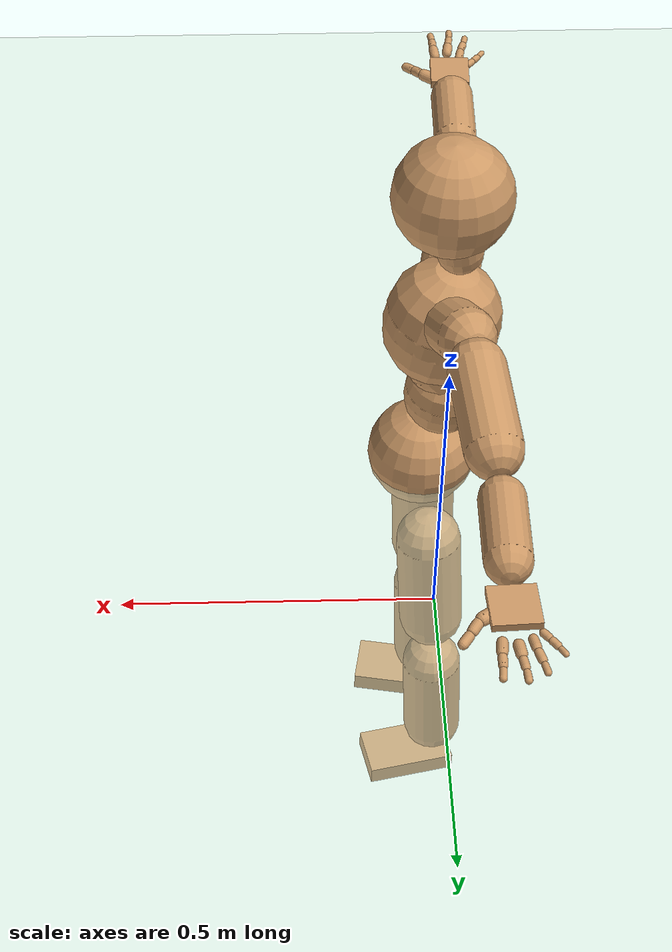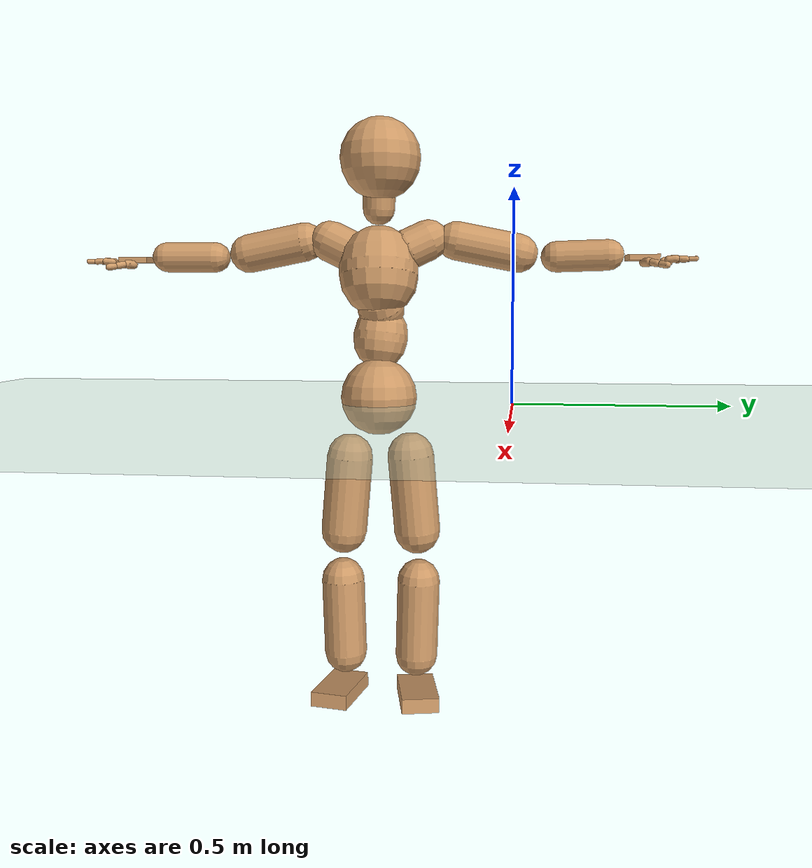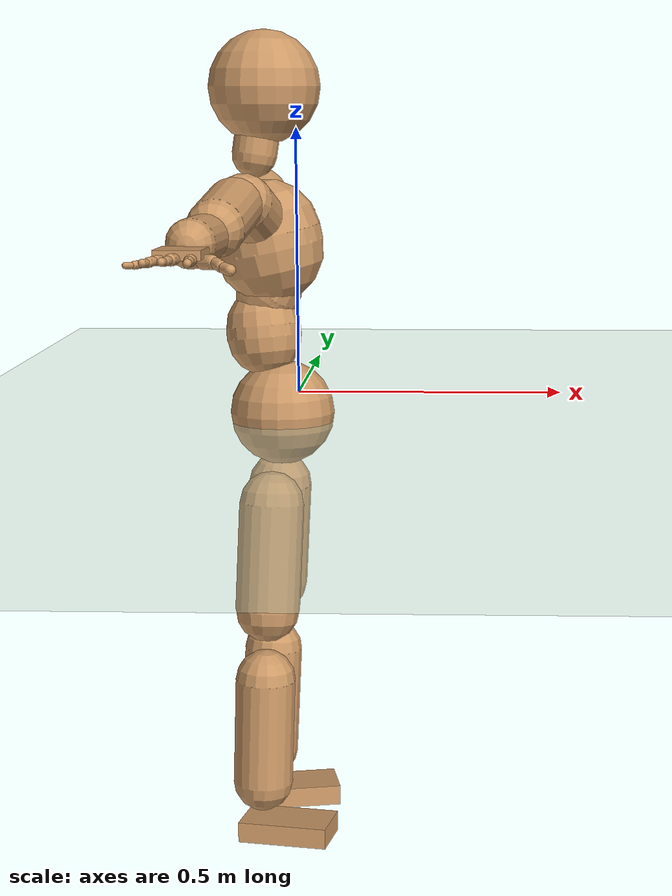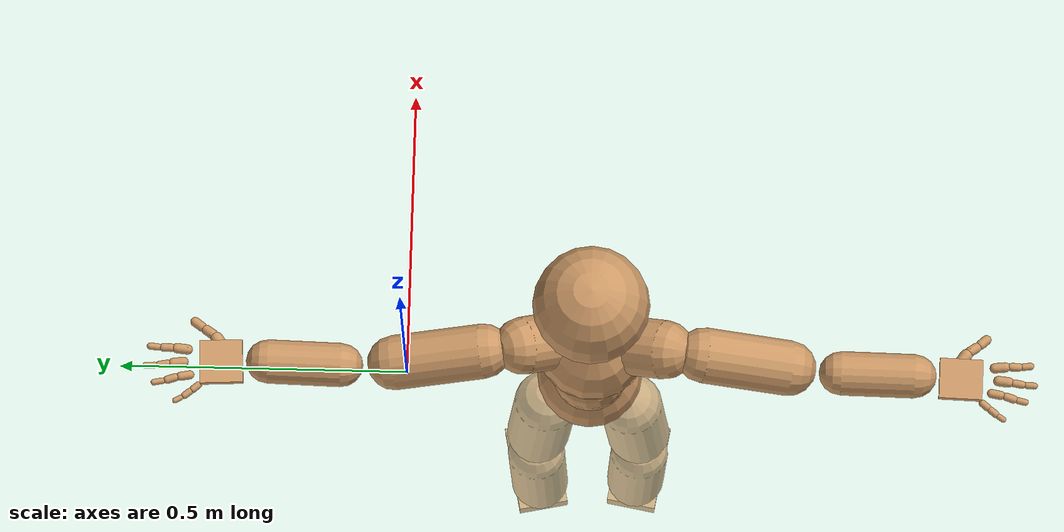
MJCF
<mujoco model="humanoid">
  <compiler coordinate="local" angle="radian"/>
  <default>
    <joint damping="0.0" armature="0.01" stiffness="0.0" limited="true"/>
    <geom conaffinity="1" condim="3" contype="7" margin="0.001" rgba="0.8 0.6 .4 1"/>
  </default>
  <asset>
    <texture type="skybox" builtin="gradient" rgb1=".4 .5 .6" rgb2="0 0 0" width="100" height="100"/>
    <texture builtin="flat" height="1278" mark="cross" markrgb="1 1 1" name="texgeom" random="0.01" rgb1="0.8 0.6 0.4" rgb2="0.8 0.6 0.4" type="cube" width="127"/>
    <texture builtin="checker" height="100" name="texplane" rgb1="0 0 0" rgb2="0.8 0.8 0.8" type="2d" width="100"/>
    <material name="MatPlane" reflectance="0.5" shininess="1" specular="1" texrepeat="60 60" texture="texplane"/>
    <material name="geom" texture="texgeom" texuniform="true"/>
  </asset>
  <worldbody>
    <light cutoff="100" diffuse="1 1 1" dir="-0 0 -1.3" directional="true" exponent="1" pos="0 0 1.3" specular=".1 .1 .1"/>
    <geom conaffinity="1" condim="3" name="floor" pos="0 0 0" rgba="0.8 0.9 0.8 1" size="100 100 .2" type="plane" material="MatPlane"/>
    <body name="Pelvis" pos="0.0004 -0.3167 0.0142">
      <freejoint name="Pelvis"/>
      <geom type="sphere" contype="1" conaffinity="1" density="500" size="0.0911" pos="0.0000 0.0000 0.0000" name="Pelvis"/>
      <body name="L_Hip" pos="-0.0098 0.0697 -0.0801">
        <joint name="L_Hip_x" type="hinge" pos="0 0 0" axis="1 0 0" stiffness="800" damping="80" armature="0.02" range="-180.0000 180.0000"/>
        <joint name="L_Hip_y" type="hinge" pos="0 0 0" axis="0 1 0" stiffness="800" damping="80" armature="0.02" range="-180.0000 180.0000"/>
        <joint name="L_Hip_z" type="hinge" pos="0 0 0" axis="0 0 1" stiffness="800" damping="80" armature="0.02" range="-180.0000 180.0000"/>
        <geom type="capsule" contype="1" conaffinity="1" density="500" fromto="-0.0037 0.0049 -0.0626 -0.0149 0.0195 -0.2504" size="0.0558" name="L_Hip"/>
        <body name="L_Knee" pos="-0.0186 0.0244 -0.313">
          <joint name="L_Knee_x" type="hinge" pos="0 0 0" axis="1 0 0" stiffness="800" damping="80" armature="0.02" range="-180.0000 180.0000"/>
          <joint name="L_Knee_y" type="hinge" pos="0 0 0" axis="0 1 0" stiffness="800" damping="80" armature="0.02" range="-180.0000 180.0000"/>
          <joint name="L_Knee_z" type="hinge" pos="0 0 0" axis="0 0 1" stiffness="800" damping="80" armature="0.02" range="-180.0000 180.0000"/>
          <geom type="capsule" contype="1" conaffinity="1" density="500" fromto="-0.0031 -0.0022 -0.0643 -0.0123 -0.0087 -0.2570" size="0.052" name="L_Knee"/>
          <body name="L_Ankle" pos="-0.0154 -0.0108 -0.3213">
            <joint name="L_Ankle_x" type="hinge" pos="0 0 0" axis="1 0 0" stiffness="800" damping="80" armature="0.02" range="-180.0000 180.0000"/>
            <joint name="L_Ankle_y" type="hinge" pos="0 0 0" axis="0 1 0" stiffness="800" damping="80" armature="0.02" range="-180.0000 180.0000"/>
            <joint name="L_Ankle_z" type="hinge" pos="0 0 0" axis="0 0 1" stiffness="800" damping="80" armature="0.02" range="-180.0000 180.0000"/>
            <geom type="box" contype="1" conaffinity="1" density="500" pos="0.0494 0.0102 -0.0186" size="0.0785 0.045 0.0179" quat="0.9948 0.0000 0.0000 0.1020" name="L_Ankle"/>
            <body name="L_Toe" pos="0.0988 0.0205 -0.0372">
              <joint name="L_Toe_x" type="hinge" pos="0 0 0" axis="1 0 0" stiffness="500" damping="50" armature="0.02" range="-180.0000 180.0000"/>
              <joint name="L_Toe_y" type="hinge" pos="0 0 0" axis="0 1 0" stiffness="500" damping="50" armature="0.02" range="-180.0000 180.0000"/>
              <joint name="L_Toe_z" type="hinge" pos="0 0 0" axis="0 0 1" stiffness="500" damping="50" armature="0.02" range="-180.0000 180.0000"/>
              <geom type="box" contype="1" conaffinity="1" density="500" pos="0.0000 0.0000 0.0202" size="0.0009 0.0022 0.001" quat="0.9940 0.0000 0.0000 0.1095" name="L_Toe"/>
            </body>
          </body>
        </body>
      </body>
      <body name="R_Hip" pos="-0.011 -0.0683 -0.0863">
        <joint name="R_Hip_x" type="hinge" pos="0 0 0" axis="1 0 0" stiffness="800" damping="80" armature="0.02" range="-180.0000 180.0000"/>
        <joint name="R_Hip_y" type="hinge" pos="0 0 0" axis="0 1 0" stiffness="800" damping="80" armature="0.02" range="-180.0000 180.0000"/>
        <joint name="R_Hip_z" type="hinge" pos="0 0 0" axis="0 0 1" stiffness="800" damping="80" armature="0.02" range="-180.0000 180.0000"/>
        <geom type="capsule" contype="1" conaffinity="1" density="500" fromto="-0.0026 -0.0057 -0.0618 -0.0103 -0.0229 -0.2471" size="0.0556" name="R_Hip"/>
        <body name="R_Knee" pos="-0.0128 -0.0286 -0.3088">
          <joint name="R_Knee_x" type="hinge" pos="0 0 0" axis="1 0 0" stiffness="800" damping="80" armature="0.02" range="-180.0000 180.0000"/>
          <joint name="R_Knee_y" type="hinge" pos="0 0 0" axis="0 1 0" stiffness="800" damping="80" armature="0.02" range="-180.0000 180.0000"/>
          <joint name="R_Knee_z" type="hinge" pos="0 0 0" axis="0 0 1" stiffness="800" damping="80" armature="0.02" range="-180.0000 180.0000"/>
          <geom type="capsule" contype="1" conaffinity="1" density="500" fromto="-0.0023 0.0013 -0.0626 -0.0093 0.0052 -0.2506" size="0.0521" name="R_Knee"/>
          <body name="R_Ankle" pos="-0.0116 0.0065 -0.3132">
            <joint name="R_Ankle_x" type="hinge" pos="0 0 0" axis="1 0 0" stiffness="800" damping="80" armature="0.02" range="-180.0000 180.0000"/>
            <joint name="R_Ankle_y" type="hinge" pos="0 0 0" axis="0 1 0" stiffness="800" damping="80" armature="0.02" range="-180.0000 180.0000"/>
            <joint name="R_Ankle_z" type="hinge" pos="0 0 0" axis="0 0 1" stiffness="800" damping="80" armature="0.02" range="-180.0000 180.0000"/>
            <geom type="box" contype="1" conaffinity="1" density="500" pos="0.0463 -0.0084 -0.0203" size="0.0785 0.045 0.0179" quat="0.9960 0.0000 0.0000 -0.0892" name="R_Ankle"/>
            <body name="R_Toe" pos="0.0926 -0.0167 -0.0405">
              <joint name="R_Toe_x" type="hinge" pos="0 0 0" axis="1 0 0" stiffness="500" damping="50" armature="0.02" range="-180.0000 180.0000"/>
              <joint name="R_Toe_y" type="hinge" pos="0 0 0" axis="0 1 0" stiffness="500" damping="50" armature="0.02" range="-180.0000 180.0000"/>
              <joint name="R_Toe_z" type="hinge" pos="0 0 0" axis="0 0 1" stiffness="500" damping="50" armature="0.02" range="-180.0000 180.0000"/>
              <geom type="box" contype="1" conaffinity="1" density="500" pos="0.0000 0.0000 0.0218" size="0.0009 0.0022 0.001" quat="0.9970 0.0000 0.0000 -0.0771" name="R_Toe"/>
            </body>
          </body>
        </body>
      </body>
      <body name="Torso" pos="-0.0259 -0.0051 0.0901">
        <joint name="Torso_x" type="hinge" pos="0 0 0" axis="1 0 0" stiffness="1000" damping="100" armature="0.02" range="-180.0000 180.0000"/>
        <joint name="Torso_y" type="hinge" pos="0 0 0" axis="0 1 0" stiffness="1000" damping="100" armature="0.02" range="-180.0000 180.0000"/>
        <joint name="Torso_z" type="hinge" pos="0 0 0" axis="0 0 1" stiffness="1000" damping="100" armature="0.02" range="-180.0000 180.0000"/>
        <geom type="capsule" contype="1" conaffinity="1" density="500" fromto="-0.0062 0.0062 0.0609 -0.0042 0.0041 0.0406" size="0.0652" name="Torso"/>
        <body name="Spine" pos="-0.0104 0.0103 0.1016">
          <joint name="Spine_x" type="hinge" pos="0 0 0" axis="1 0 0" stiffness="1000" damping="100" armature="0.02" range="-180.0000 180.0000"/>
          <joint name="Spine_y" type="hinge" pos="0 0 0" axis="0 1 0" stiffness="1000" damping="100" armature="0.02" range="-180.0000 180.0000"/>
          <joint name="Spine_z" type="hinge" pos="0 0 0" axis="0 0 1" stiffness="1000" damping="100" armature="0.02" range="-180.0000 180.0000"/>
          <geom type="capsule" contype="1" conaffinity="1" density="500" fromto="0.0174 -0.0035 0.0237 0.0116 -0.0023 0.0158" size="0.0556" name="Spine"/>
          <body name="Chest" pos="0.029 -0.0059 0.0395">
            <joint name="Chest_x" type="hinge" pos="0 0 0" axis="1 0 0" stiffness="1000" damping="100" armature="0.02" range="-180.0000 180.0000"/>
            <joint name="Chest_y" type="hinge" pos="0 0 0" axis="0 1 0" stiffness="1000" damping="100" armature="0.02" range="-180.0000 180.0000"/>
            <joint name="Chest_z" type="hinge" pos="0 0 0" axis="0 0 1" stiffness="1000" damping="100" armature="0.02" range="-180.0000 180.0000"/>
            <geom type="capsule" contype="1" conaffinity="1" density="500" fromto="-0.0166 -0.0017 0.0796 -0.0111 -0.0011 0.0531" size="0.0943" name="Chest"/>
            <body name="Neck" pos="-0.0395 -0.0056 0.1853">
              <joint name="Neck_x" type="hinge" pos="0 0 0" axis="1 0 0" stiffness="500" damping="50" armature="0.02" range="-180.0000 180.0000"/>
              <joint name="Neck_y" type="hinge" pos="0 0 0" axis="0 1 0" stiffness="500" damping="50" armature="0.02" range="-180.0000 180.0000"/>
              <joint name="Neck_z" type="hinge" pos="0 0 0" axis="0 0 1" stiffness="500" damping="50" armature="0.02" range="-180.0000 180.0000"/>
              <geom type="capsule" contype="1" conaffinity="1" density="500" fromto="0.0043 0.0017 0.0286 0.0174 0.0067 0.1143" size="0.0388" name="Neck"/>
              <body name="Head" pos="0.0217 0.0084 0.1428">
                <joint name="Head_x" type="hinge" pos="0 0 0" axis="1 0 0" stiffness="500" damping="50" armature="0.02" range="-180.0000 180.0000"/>
                <joint name="Head_y" type="hinge" pos="0 0 0" axis="0 1 0" stiffness="500" damping="50" armature="0.02" range="-180.0000 180.0000"/>
                <joint name="Head_z" type="hinge" pos="0 0 0" axis="0 0 1" stiffness="500" damping="50" armature="0.02" range="-180.0000 180.0000"/>
                <geom type="sphere" contype="1" conaffinity="1" density="500" size="0.0963" pos="0.0000 0.0000 0.0000" name="Head"/>
              </body>
            </body>
            <body name="L_Thorax" pos="-0.0187 0.0488 0.1083">
              <joint name="L_Thorax_x" type="hinge" pos="0 0 0" axis="1 0 0" stiffness="500" damping="50" armature="0.02" range="-180.0000 180.0000"/>
              <joint name="L_Thorax_y" type="hinge" pos="0 0 0" axis="0 1 0" stiffness="500" damping="50" armature="0.02" range="-180.0000 180.0000"/>
              <joint name="L_Thorax_z" type="hinge" pos="0 0 0" axis="0 0 1" stiffness="500" damping="50" armature="0.02" range="-180.0000 180.0000"/>
              <geom type="capsule" contype="1" conaffinity="1" density="500" fromto="-0.0053 0.0165 0.0080 -0.0213 0.0658 0.0319" size="0.0481" name="L_Thorax"/>
              <body name="L_Shoulder" pos="-0.0266 0.0823 0.0398">
                <joint name="L_Shoulder_x" type="hinge" pos="0 0 0" axis="1 0 0" stiffness="500" damping="50" armature="0.02" range="-180.0000 180.0000"/>
                <joint name="L_Shoulder_y" type="hinge" pos="0 0 0" axis="0 1 0" stiffness="500" damping="50" armature="0.02" range="-180.0000 180.0000"/>
                <joint name="L_Shoulder_z" type="hinge" pos="0 0 0" axis="0 0 1" stiffness="500" damping="50" armature="0.02" range="-180.0000 180.0000"/>
                <geom type="capsule" contype="1" conaffinity="1" density="500" fromto="-0.0051 0.0490 -0.0098 -0.0206 0.1961 -0.0390" size="0.0463" name="L_Shoulder"/>
                <body name="L_Elbow" pos="-0.0257 0.2452 -0.0488">
                  <joint name="L_Elbow_x" type="hinge" pos="0 0 0" axis="1 0 0" stiffness="500" damping="50" armature="0.02" range="-720.0000 720.0000"/>
                  <joint name="L_Elbow_y" type="hinge" pos="0 0 0" axis="0 1 0" stiffness="500" damping="50" armature="0.02" range="-720.0000 720.0000"/>
                  <joint name="L_Elbow_z" type="hinge" pos="0 0 0" axis="0 0 1" stiffness="500" damping="50" armature="0.02" range="-720.0000 720.0000"/>
                  <geom type="capsule" contype="1" conaffinity="1" density="500" fromto="0.0008 0.0408 0.0012 0.0031 0.1630 0.0048" size="0.0367" name="L_Elbow"/>
                  <body name="L_Wrist" pos="0.0039 0.2038 0.006">
                    <joint name="L_Wrist_x" type="hinge" pos="0 0 0" axis="1 0 0" stiffness="300" damping="30" armature="0.02" range="-180.0000 180.0000"/>
                    <joint name="L_Wrist_y" type="hinge" pos="0 0 0" axis="0 1 0" stiffness="300" damping="30" armature="0.02" range="-180.0000 180.0000"/>
                    <joint name="L_Wrist_z" type="hinge" pos="0 0 0" axis="0 0 1" stiffness="300" damping="30" armature="0.02" range="-180.0000 180.0000"/>
                    <geom type="box" contype="1" conaffinity="1" density="500" pos="-0.0019 0.0377 -0.0079" size="0.036 0.0364 0.0067" quat="0.7246 0.0000 0.0000 -0.6892" name="L_Wrist"/>
                    <body name="L_Index1" pos="0.0191 0.0891 -0.0138">
                      <joint name="L_Index1_x" type="hinge" pos="0 0 0" axis="1 0 0" stiffness="100" damping="10" armature="0.02" range="-180.0000 180.0000"/>
                      <joint name="L_Index1_y" type="hinge" pos="0 0 0" axis="0 1 0" stiffness="100" damping="10" armature="0.02" range="-180.0000 180.0000"/>
                      <joint name="L_Index1_z" type="hinge" pos="0 0 0" axis="0 0 1" stiffness="100" damping="10" armature="0.02" range="-180.0000 180.0000"/>
                      <geom type="capsule" contype="1" conaffinity="1" density="500" fromto="0.0005 0.0059 0.0005 0.0021 0.0235 0.0020" size="0.0084" name="L_Index1"/>
                      <body name="L_Index2" pos="0.0026 0.0294 0.0025">
                        <joint name="L_Index2_x" type="hinge" pos="0 0 0" axis="1 0 0" stiffness="100" damping="10" armature="0.02" range="-180.0000 180.0000"/>
                        <joint name="L_Index2_y" type="hinge" pos="0 0 0" axis="0 1 0" stiffness="100" damping="10" armature="0.02" range="-180.0000 180.0000"/>
                        <joint name="L_Index2_z" type="hinge" pos="0 0 0" axis="0 0 1" stiffness="100" damping="10" armature="0.02" range="-180.0000 180.0000"/>
                        <geom type="capsule" contype="1" conaffinity="1" density="500" fromto="0.0001 0.0042 -0.0003 0.0003 0.0167 -0.0011" size="0.007" name="L_Index2"/>
                        <body name="L_Index3" pos="0.0003 0.0209 -0.0013">
                          <joint name="L_Index3_x" type="hinge" pos="0 0 0" axis="1 0 0" stiffness="100" damping="10" armature="0.02" range="-180.0000 180.0000"/>
                          <joint name="L_Index3_y" type="hinge" pos="0 0 0" axis="0 1 0" stiffness="100" damping="10" armature="0.02" range="-180.0000 180.0000"/>
                          <joint name="L_Index3_z" type="hinge" pos="0 0 0" axis="0 0 1" stiffness="100" damping="10" armature="0.02" range="-180.0000 180.0000"/>
                          <geom type="capsule" contype="1" conaffinity="1" density="500" fromto="0.0005 0.0046 0.0001 0.0019 0.0183 0.0005" size="0.0058" name="L_Index3"/>
                        </body>
                      </body>
                    </body>
                    <body name="L_Middle1" pos="-0.0019 0.0954 -0.0118">
                      <joint name="L_Middle1_x" type="hinge" pos="0 0 0" axis="1 0 0" stiffness="100" damping="10" armature="0.02" range="-180.0000 180.0000"/>
                      <joint name="L_Middle1_y" type="hinge" pos="0 0 0" axis="0 1 0" stiffness="100" damping="10" armature="0.02" range="-180.0000 180.0000"/>
                      <joint name="L_Middle1_z" type="hinge" pos="0 0 0" axis="0 0 1" stiffness="100" damping="10" armature="0.02" range="-180.0000 180.0000"/>
                      <geom type="capsule" contype="1" conaffinity="1" density="500" fromto="-0.0007 0.0056 0.0002 -0.0029 0.0223 0.0010" size="0.0086" name="L_Middle1"/>
                      <body name="L_Middle2" pos="-0.0036 0.0279 0.0012">
                        <joint name="L_Middle2_x" type="hinge" pos="0 0 0" axis="1 0 0" stiffness="100" damping="10" armature="0.02" range="-180.0000 180.0000"/>
                        <joint name="L_Middle2_y" type="hinge" pos="0 0 0" axis="0 1 0" stiffness="100" damping="10" armature="0.02" range="-180.0000 180.0000"/>
                        <joint name="L_Middle2_z" type="hinge" pos="0 0 0" axis="0 0 1" stiffness="100" damping="10" armature="0.02" range="-180.0000 180.0000"/>
                        <geom type="capsule" contype="1" conaffinity="1" density="500" fromto="-0.0007 0.0043 -0.0001 -0.0028 0.0173 -0.0004" size="0.0065" name="L_Middle2"/>
                        <body name="L_Middle3" pos="-0.0035 0.0216 -0.0005">
                          <joint name="L_Middle3_x" type="hinge" pos="0 0 0" axis="1 0 0" stiffness="100" damping="10" armature="0.02" range="-180.0000 180.0000"/>
                          <joint name="L_Middle3_y" type="hinge" pos="0 0 0" axis="0 1 0" stiffness="100" damping="10" armature="0.02" range="-180.0000 180.0000"/>
                          <joint name="L_Middle3_z" type="hinge" pos="0 0 0" axis="0 0 1" stiffness="100" damping="10" armature="0.02" range="-180.0000 180.0000"/>
                          <geom type="capsule" contype="1" conaffinity="1" density="500" fromto="-0.0003 0.0047 0.0003 -0.0012 0.0189 0.0012" size="0.0056" name="L_Middle3"/>
                        </body>
                      </body>
                    </body>
                    <body name="L_Pinky1" pos="-0.0377 0.0724 -0.0187">
                      <joint name="L_Pinky1_x" type="hinge" pos="0 0 0" axis="1 0 0" stiffness="100" damping="10" armature="0.02" range="-180.0000 180.0000"/>
                      <joint name="L_Pinky1_y" type="hinge" pos="0 0 0" axis="0 1 0" stiffness="100" damping="10" armature="0.02" range="-180.0000 180.0000"/>
                      <joint name="L_Pinky1_z" type="hinge" pos="0 0 0" axis="0 0 1" stiffness="100" damping="10" armature="0.02" range="-180.0000 180.0000"/>
                      <geom type="capsule" contype="1" conaffinity="1" density="500" fromto="-0.0022 0.0027 -0.0001 -0.0090 0.0109 -0.0003" size="0.0062" name="L_Pinky1"/>
                      <body name="L_Pinky2" pos="-0.0112 0.0137 -0.0004">
                        <joint name="L_Pinky2_x" type="hinge" pos="0 0 0" axis="1 0 0" stiffness="100" damping="10" armature="0.02" range="-180.0000 180.0000"/>
                        <joint name="L_Pinky2_y" type="hinge" pos="0 0 0" axis="0 1 0" stiffness="100" damping="10" armature="0.02" range="-180.0000 180.0000"/>
                        <joint name="L_Pinky2_z" type="hinge" pos="0 0 0" axis="0 0 1" stiffness="100" damping="10" armature="0.02" range="-180.0000 180.0000"/>
                        <geom type="capsule" contype="1" conaffinity="1" density="500" fromto="-0.0022 0.0028 -0.0002 -0.0088 0.0112 -0.0007" size="0.006" name="L_Pinky2"/>
                        <body name="L_Pinky3" pos="-0.011 0.014 -0.0008">
                          <joint name="L_Pinky3_x" type="hinge" pos="0 0 0" axis="1 0 0" stiffness="100" damping="10" armature="0.02" range="-180.0000 180.0000"/>
                          <joint name="L_Pinky3_y" type="hinge" pos="0 0 0" axis="0 1 0" stiffness="100" damping="10" armature="0.02" range="-180.0000 180.0000"/>
                          <joint name="L_Pinky3_z" type="hinge" pos="0 0 0" axis="0 0 1" stiffness="100" damping="10" armature="0.02" range="-180.0000 180.0000"/>
                          <geom type="capsule" contype="1" conaffinity="1" density="500" fromto="-0.0018 0.0032 0.0002 -0.0072 0.0128 0.0009" size="0.0046" name="L_Pinky3"/>
                        </body>
                      </body>
                    </body>
                    <body name="L_Ring1" pos="-0.0229 0.0845 -0.0142">
                      <joint name="L_Ring1_x" type="hinge" pos="0 0 0" axis="1 0 0" stiffness="100" damping="10" armature="0.02" range="-180.0000 180.0000"/>
                      <joint name="L_Ring1_y" type="hinge" pos="0 0 0" axis="0 1 0" stiffness="100" damping="10" armature="0.02" range="-180.0000 180.0000"/>
                      <joint name="L_Ring1_z" type="hinge" pos="0 0 0" axis="0 0 1" stiffness="100" damping="10" armature="0.02" range="-180.0000 180.0000"/>
                      <geom type="capsule" contype="1" conaffinity="1" density="500" fromto="-0.0010 0.0051 0.0003 -0.0039 0.0203 0.0013" size="0.0074" name="L_Ring1"/>
                      <body name="L_Ring2" pos="-0.0049 0.0254 0.0016">
                        <joint name="L_Ring2_x" type="hinge" pos="0 0 0" axis="1 0 0" stiffness="100" damping="10" armature="0.02" range="-180.0000 180.0000"/>
                        <joint name="L_Ring2_y" type="hinge" pos="0 0 0" axis="0 1 0" stiffness="100" damping="10" armature="0.02" range="-180.0000 180.0000"/>
                        <joint name="L_Ring2_z" type="hinge" pos="0 0 0" axis="0 0 1" stiffness="100" damping="10" armature="0.02" range="-180.0000 180.0000"/>
                        <geom type="capsule" contype="1" conaffinity="1" density="500" fromto="-0.0013 0.0042 -0.0002 -0.0053 0.0167 -0.0007" size="0.0068" name="L_Ring2"/>
                        <body name="L_Ring3" pos="-0.0066 0.0208 -0.0008">
                          <joint name="L_Ring3_x" type="hinge" pos="0 0 0" axis="1 0 0" stiffness="100" damping="10" armature="0.02" range="-180.0000 180.0000"/>
                          <joint name="L_Ring3_y" type="hinge" pos="0 0 0" axis="0 1 0" stiffness="100" damping="10" armature="0.02" range="-180.0000 180.0000"/>
                          <joint name="L_Ring3_z" type="hinge" pos="0 0 0" axis="0 0 1" stiffness="100" damping="10" armature="0.02" range="-180.0000 180.0000"/>
                          <geom type="capsule" contype="1" conaffinity="1" density="500" fromto="-0.0009 0.0046 0.0002 -0.0037 0.0183 0.0009" size="0.0053" name="L_Ring3"/>
                        </body>
                      </body>
                    </body>
                    <body name="L_Thumb1" pos="0.0246 0.0356 -0.0207">
                      <joint name="L_Thumb1_x" type="hinge" pos="0 0 0" axis="1 0 0" stiffness="100" damping="10" armature="0.02" range="-180.0000 180.0000"/>
                      <joint name="L_Thumb1_y" type="hinge" pos="0 0 0" axis="0 1 0" stiffness="100" damping="10" armature="0.02" range="-180.0000 180.0000"/>
                      <joint name="L_Thumb1_z" type="hinge" pos="0 0 0" axis="0 0 1" stiffness="100" damping="10" armature="0.02" range="-180.0000 180.0000"/>
                      <geom type="capsule" contype="1" conaffinity="1" density="500" fromto="0.0044 0.0031 0.0002 0.0176 0.0122 0.0008" size="0.0107" name="L_Thumb1"/>
                      <body name="L_Thumb2" pos="0.0219 0.0153 0.001">
                        <joint name="L_Thumb2_x" type="hinge" pos="0 0 0" axis="1 0 0" stiffness="100" damping="10" armature="0.02" range="-180.0000 180.0000"/>
                        <joint name="L_Thumb2_y" type="hinge" pos="0 0 0" axis="0 1 0" stiffness="100" damping="10" armature="0.02" range="-180.0000 180.0000"/>
                        <joint name="L_Thumb2_z" type="hinge" pos="0 0 0" axis="0 0 1" stiffness="100" damping="10" armature="0.02" range="-180.0000 180.0000"/>
                        <geom type="capsule" contype="1" conaffinity="1" density="500" fromto="0.0026 0.0037 -0.0011 0.0105 0.0147 -0.0042" size="0.0085" name="L_Thumb2"/>
                        <body name="L_Thumb3" pos="0.0131 0.0184 -0.0053">
                          <joint name="L_Thumb3_x" type="hinge" pos="0 0 0" axis="1 0 0" stiffness="100" damping="10" armature="0.02" range="-180.0000 180.0000"/>
                          <joint name="L_Thumb3_y" type="hinge" pos="0 0 0" axis="0 1 0" stiffness="100" damping="10" armature="0.02" range="-180.0000 180.0000"/>
                          <joint name="L_Thumb3_z" type="hinge" pos="0 0 0" axis="0 0 1" stiffness="100" damping="10" armature="0.02" range="-180.0000 180.0000"/>
                          <geom type="capsule" contype="1" conaffinity="1" density="500" fromto="0.0030 0.0041 -0.0007 0.0121 0.0163 -0.0026" size="0.008" name="L_Thumb3"/>
                        </body>
                      </body>
                    </body>
                  </body>
                </body>
              </body>
            </body>
            <body name="R_Thorax" pos="-0.0249 -0.0516 0.1046">
              <joint name="R_Thorax_x" type="hinge" pos="0 0 0" axis="1 0 0" stiffness="500" damping="50" armature="0.02" range="-180.0000 180.0000"/>
              <joint name="R_Thorax_y" type="hinge" pos="0 0 0" axis="0 1 0" stiffness="500" damping="50" armature="0.02" range="-180.0000 180.0000"/>
              <joint name="R_Thorax_z" type="hinge" pos="0 0 0" axis="0 0 1" stiffness="500" damping="50" armature="0.02" range="-180.0000 180.0000"/>
              <geom type="capsule" contype="1" conaffinity="1" density="500" fromto="-0.0040 -0.0177 0.0084 -0.0159 -0.0708 0.0337" size="0.0493" name="R_Thorax"/>
              <body name="R_Shoulder" pos="-0.0198 -0.0885 0.0421">
                <joint name="R_Shoulder_x" type="hinge" pos="0 0 0" axis="1 0 0" stiffness="500" damping="50" armature="0.02" range="-180.0000 180.0000"/>
                <joint name="R_Shoulder_y" type="hinge" pos="0 0 0" axis="0 1 0" stiffness="500" damping="50" armature="0.02" range="-180.0000 180.0000"/>
                <joint name="R_Shoulder_z" type="hinge" pos="0 0 0" axis="0 0 1" stiffness="500" damping="50" armature="0.02" range="-180.0000 180.0000"/>
                <geom type="capsule" contype="1" conaffinity="1" density="500" fromto="-0.0039 -0.0472 -0.0089 -0.0156 -0.1889 -0.0354" size="0.0467" name="R_Shoulder"/>
                <body name="R_Elbow" pos="-0.0195 -0.2361 -0.0443">
                  <joint name="R_Elbow_x" type="hinge" pos="0 0 0" axis="1 0 0" stiffness="500" damping="50" armature="0.02" range="-720.0000 720.0000"/>
                  <joint name="R_Elbow_y" type="hinge" pos="0 0 0" axis="0 1 0" stiffness="500" damping="50" armature="0.02" range="-720.0000 720.0000"/>
                  <joint name="R_Elbow_z" type="hinge" pos="0 0 0" axis="0 0 1" stiffness="500" damping="50" armature="0.02" range="-720.0000 720.0000"/>
                  <geom type="capsule" contype="1" conaffinity="1" density="500" fromto="-0.0008 -0.0409 0.0004 -0.0033 -0.1635 0.0016" size="0.0369" name="R_Elbow"/>
                  <body name="R_Wrist" pos="-0.0042 -0.2044 0.002">
                    <joint name="R_Wrist_x" type="hinge" pos="0 0 0" axis="1 0 0" stiffness="300" damping="30" armature="0.02" range="-180.0000 180.0000"/>
                    <joint name="R_Wrist_y" type="hinge" pos="0 0 0" axis="0 1 0" stiffness="300" damping="30" armature="0.02" range="-180.0000 180.0000"/>
                    <joint name="R_Wrist_z" type="hinge" pos="0 0 0" axis="0 0 1" stiffness="300" damping="30" armature="0.02" range="-180.0000 180.0000"/>
                    <geom type="box" contype="1" conaffinity="1" density="500" pos="-0.0012 -0.0372 -0.0075" size="0.036 0.0341 0.0069" quat="0.7187 0.0000 0.0000 0.6953" name="R_Wrist"/>
                    <body name="R_Index1" pos="0.0204 -0.0882 -0.0129">
                      <joint name="R_Index1_x" type="hinge" pos="0 0 0" axis="1 0 0" stiffness="100" damping="10" armature="0.02" range="-180.0000 180.0000"/>
                      <joint name="R_Index1_y" type="hinge" pos="0 0 0" axis="0 1 0" stiffness="100" damping="10" armature="0.02" range="-180.0000 180.0000"/>
                      <joint name="R_Index1_z" type="hinge" pos="0 0 0" axis="0 0 1" stiffness="100" damping="10" armature="0.02" range="-180.0000 180.0000"/>
                      <geom type="capsule" contype="1" conaffinity="1" density="500" fromto="0.0005 -0.0059 0.0005 0.0021 -0.0235 0.0020" size="0.0084" name="R_Index1"/>
                      <body name="R_Index2" pos="0.0026 -0.0294 0.0025">
                        <joint name="R_Index2_x" type="hinge" pos="0 0 0" axis="1 0 0" stiffness="100" damping="10" armature="0.02" range="-180.0000 180.0000"/>
                        <joint name="R_Index2_y" type="hinge" pos="0 0 0" axis="0 1 0" stiffness="100" damping="10" armature="0.02" range="-180.0000 180.0000"/>
                        <joint name="R_Index2_z" type="hinge" pos="0 0 0" axis="0 0 1" stiffness="100" damping="10" armature="0.02" range="-180.0000 180.0000"/>
                        <geom type="capsule" contype="1" conaffinity="1" density="500" fromto="0.0001 -0.0042 -0.0003 0.0003 -0.0167 -0.0011" size="0.007" name="R_Index2"/>
                        <body name="R_Index3" pos="0.0003 -0.0209 -0.0013">
                          <joint name="R_Index3_x" type="hinge" pos="0 0 0" axis="1 0 0" stiffness="100" damping="10" armature="0.02" range="-180.0000 180.0000"/>
                          <joint name="R_Index3_y" type="hinge" pos="0 0 0" axis="0 1 0" stiffness="100" damping="10" armature="0.02" range="-180.0000 180.0000"/>
                          <joint name="R_Index3_z" type="hinge" pos="0 0 0" axis="0 0 1" stiffness="100" damping="10" armature="0.02" range="-180.0000 180.0000"/>
                          <geom type="capsule" contype="1" conaffinity="1" density="500" fromto="0.0005 -0.0038 0.0001 0.0019 -0.0151 0.0005" size="0.0061" name="R_Index3"/>
                        </body>
                      </body>
                    </body>
                    <body name="R_Middle1" pos="-0.0006 -0.0945 -0.0109">
                      <joint name="R_Middle1_x" type="hinge" pos="0 0 0" axis="1 0 0" stiffness="100" damping="10" armature="0.02" range="-180.0000 180.0000"/>
                      <joint name="R_Middle1_y" type="hinge" pos="0 0 0" axis="0 1 0" stiffness="100" damping="10" armature="0.02" range="-180.0000 180.0000"/>
                      <joint name="R_Middle1_z" type="hinge" pos="0 0 0" axis="0 0 1" stiffness="100" damping="10" armature="0.02" range="-180.0000 180.0000"/>
                      <geom type="capsule" contype="1" conaffinity="1" density="500" fromto="-0.0007 -0.0056 0.0002 -0.0029 -0.0223 0.0010" size="0.0086" name="R_Middle1"/>
                      <body name="R_Middle2" pos="-0.0036 -0.0279 0.0012">
                        <joint name="R_Middle2_x" type="hinge" pos="0 0 0" axis="1 0 0" stiffness="100" damping="10" armature="0.02" range="-180.0000 180.0000"/>
                        <joint name="R_Middle2_y" type="hinge" pos="0 0 0" axis="0 1 0" stiffness="100" damping="10" armature="0.02" range="-180.0000 180.0000"/>
                        <joint name="R_Middle2_z" type="hinge" pos="0 0 0" axis="0 0 1" stiffness="100" damping="10" armature="0.02" range="-180.0000 180.0000"/>
                        <geom type="capsule" contype="1" conaffinity="1" density="500" fromto="-0.0007 -0.0043 -0.0001 -0.0028 -0.0173 -0.0004" size="0.0065" name="R_Middle2"/>
                        <body name="R_Middle3" pos="-0.0035 -0.0216 -0.0005">
                          <joint name="R_Middle3_x" type="hinge" pos="0 0 0" axis="1 0 0" stiffness="100" damping="10" armature="0.02" range="-180.0000 180.0000"/>
                          <joint name="R_Middle3_y" type="hinge" pos="0 0 0" axis="0 1 0" stiffness="100" damping="10" armature="0.02" range="-180.0000 180.0000"/>
                          <joint name="R_Middle3_z" type="hinge" pos="0 0 0" axis="0 0 1" stiffness="100" damping="10" armature="0.02" range="-180.0000 180.0000"/>
                          <geom type="capsule" contype="1" conaffinity="1" density="500" fromto="-0.0003 -0.0039 0.0003 -0.0012 -0.0157 0.0012" size="0.0058" name="R_Middle3"/>
                        </body>
                      </body>
                    </body>
                    <body name="R_Pinky1" pos="-0.0364 -0.0715 -0.0178">
                      <joint name="R_Pinky1_x" type="hinge" pos="0 0 0" axis="1 0 0" stiffness="100" damping="10" armature="0.02" range="-180.0000 180.0000"/>
                      <joint name="R_Pinky1_y" type="hinge" pos="0 0 0" axis="0 1 0" stiffness="100" damping="10" armature="0.02" range="-180.0000 180.0000"/>
                      <joint name="R_Pinky1_z" type="hinge" pos="0 0 0" axis="0 0 1" stiffness="100" damping="10" armature="0.02" range="-180.0000 180.0000"/>
                      <geom type="capsule" contype="1" conaffinity="1" density="500" fromto="-0.0022 -0.0027 -0.0001 -0.0090 -0.0109 -0.0003" size="0.0062" name="R_Pinky1"/>
                      <body name="R_Pinky2" pos="-0.0112 -0.0137 -0.0004">
                        <joint name="R_Pinky2_x" type="hinge" pos="0 0 0" axis="1 0 0" stiffness="100" damping="10" armature="0.02" range="-180.0000 180.0000"/>
                        <joint name="R_Pinky2_y" type="hinge" pos="0 0 0" axis="0 1 0" stiffness="100" damping="10" armature="0.02" range="-180.0000 180.0000"/>
                        <joint name="R_Pinky2_z" type="hinge" pos="0 0 0" axis="0 0 1" stiffness="100" damping="10" armature="0.02" range="-180.0000 180.0000"/>
                        <geom type="capsule" contype="1" conaffinity="1" density="500" fromto="-0.0022 -0.0028 -0.0002 -0.0088 -0.0112 -0.0007" size="0.006" name="R_Pinky2"/>
                        <body name="R_Pinky3" pos="-0.011 -0.014 -0.0008">
                          <joint name="R_Pinky3_x" type="hinge" pos="0 0 0" axis="1 0 0" stiffness="100" damping="10" armature="0.02" range="-180.0000 180.0000"/>
                          <joint name="R_Pinky3_y" type="hinge" pos="0 0 0" axis="0 1 0" stiffness="100" damping="10" armature="0.02" range="-180.0000 180.0000"/>
                          <joint name="R_Pinky3_z" type="hinge" pos="0 0 0" axis="0 0 1" stiffness="100" damping="10" armature="0.02" range="-180.0000 180.0000"/>
                          <geom type="capsule" contype="1" conaffinity="1" density="500" fromto="-0.0018 -0.0024 0.0002 -0.0072 -0.0096 0.0009" size="0.0049" name="R_Pinky3"/>
                        </body>
                      </body>
                    </body>
                    <body name="R_Ring1" pos="-0.0216 -0.0836 -0.0133">
                      <joint name="R_Ring1_x" type="hinge" pos="0 0 0" axis="1 0 0" stiffness="100" damping="10" armature="0.02" range="-180.0000 180.0000"/>
                      <joint name="R_Ring1_y" type="hinge" pos="0 0 0" axis="0 1 0" stiffness="100" damping="10" armature="0.02" range="-180.0000 180.0000"/>
                      <joint name="R_Ring1_z" type="hinge" pos="0 0 0" axis="0 0 1" stiffness="100" damping="10" armature="0.02" range="-180.0000 180.0000"/>
                      <geom type="capsule" contype="1" conaffinity="1" density="500" fromto="-0.0010 -0.0051 0.0003 -0.0039 -0.0203 0.0013" size="0.0074" name="R_Ring1"/>
                      <body name="R_Ring2" pos="-0.0049 -0.0254 0.0016">
                        <joint name="R_Ring2_x" type="hinge" pos="0 0 0" axis="1 0 0" stiffness="100" damping="10" armature="0.02" range="-180.0000 180.0000"/>
                        <joint name="R_Ring2_y" type="hinge" pos="0 0 0" axis="0 1 0" stiffness="100" damping="10" armature="0.02" range="-180.0000 180.0000"/>
                        <joint name="R_Ring2_z" type="hinge" pos="0 0 0" axis="0 0 1" stiffness="100" damping="10" armature="0.02" range="-180.0000 180.0000"/>
                        <geom type="capsule" contype="1" conaffinity="1" density="500" fromto="-0.0013 -0.0042 -0.0002 -0.0053 -0.0167 -0.0007" size="0.0068" name="R_Ring2"/>
                        <body name="R_Ring3" pos="-0.0066 -0.0208 -0.0008">
                          <joint name="R_Ring3_x" type="hinge" pos="0 0 0" axis="1 0 0" stiffness="100" damping="10" armature="0.02" range="-180.0000 180.0000"/>
                          <joint name="R_Ring3_y" type="hinge" pos="0 0 0" axis="0 1 0" stiffness="100" damping="10" armature="0.02" range="-180.0000 180.0000"/>
                          <joint name="R_Ring3_z" type="hinge" pos="0 0 0" axis="0 0 1" stiffness="100" damping="10" armature="0.02" range="-180.0000 180.0000"/>
                          <geom type="capsule" contype="1" conaffinity="1" density="500" fromto="-0.0009 -0.0038 0.0002 -0.0037 -0.0151 0.0009" size="0.0056" name="R_Ring3"/>
                        </body>
                      </body>
                    </body>
                    <body name="R_Thumb1" pos="0.0259 -0.0347 -0.0198">
                      <joint name="R_Thumb1_x" type="hinge" pos="0 0 0" axis="1 0 0" stiffness="100" damping="10" armature="0.02" range="-180.0000 180.0000"/>
                      <joint name="R_Thumb1_y" type="hinge" pos="0 0 0" axis="0 1 0" stiffness="100" damping="10" armature="0.02" range="-180.0000 180.0000"/>
                      <joint name="R_Thumb1_z" type="hinge" pos="0 0 0" axis="0 0 1" stiffness="100" damping="10" armature="0.02" range="-180.0000 180.0000"/>
                      <geom type="capsule" contype="1" conaffinity="1" density="500" fromto="0.0044 -0.0031 0.0002 0.0176 -0.0122 0.0008" size="0.0107" name="R_Thumb1"/>
                      <body name="R_Thumb2" pos="0.0219 -0.0153 0.001">
                        <joint name="R_Thumb2_x" type="hinge" pos="0 0 0" axis="1 0 0" stiffness="100" damping="10" armature="0.02" range="-180.0000 180.0000"/>
                        <joint name="R_Thumb2_y" type="hinge" pos="0 0 0" axis="0 1 0" stiffness="100" damping="10" armature="0.02" range="-180.0000 180.0000"/>
                        <joint name="R_Thumb2_z" type="hinge" pos="0 0 0" axis="0 0 1" stiffness="100" damping="10" armature="0.02" range="-180.0000 180.0000"/>
                        <geom type="capsule" contype="1" conaffinity="1" density="500" fromto="0.0026 -0.0037 -0.0011 0.0105 -0.0147 -0.0042" size="0.0085" name="R_Thumb2"/>
                        <body name="R_Thumb3" pos="0.0131 -0.0184 -0.0053">
                          <joint name="R_Thumb3_x" type="hinge" pos="0 0 0" axis="1 0 0" stiffness="100" damping="10" armature="0.02" range="-180.0000 180.0000"/>
                          <joint name="R_Thumb3_y" type="hinge" pos="0 0 0" axis="0 1 0" stiffness="100" damping="10" armature="0.02" range="-180.0000 180.0000"/>
                          <joint name="R_Thumb3_z" type="hinge" pos="0 0 0" axis="0 0 1" stiffness="100" damping="10" armature="0.02" range="-180.0000 180.0000"/>
                          <geom type="capsule" contype="1" conaffinity="1" density="500" fromto="0.0030 -0.0033 -0.0007 0.0121 -0.0131 -0.0026" size="0.0082" name="R_Thumb3"/>
                        </body>
                      </body>
                    </body>
                  </body>
                </body>
              </body>
            </body>
          </body>
        </body>
      </body>
    </body>
  </worldbody>
  <actuator>
    <motor name="L_Hip_x" joint="L_Hip_x" gear="500"/>
    <motor name="L_Hip_y" joint="L_Hip_y" gear="500"/>
    <motor name="L_Hip_z" joint="L_Hip_z" gear="500"/>
    <motor name="L_Knee_x" joint="L_Knee_x" gear="500"/>
    <motor name="L_Knee_y" joint="L_Knee_y" gear="500"/>
    <motor name="L_Knee_z" joint="L_Knee_z" gear="500"/>
    <motor name="L_Ankle_x" joint="L_Ankle_x" gear="500"/>
    <motor name="L_Ankle_y" joint="L_Ankle_y" gear="500"/>
    <motor name="L_Ankle_z" joint="L_Ankle_z" gear="500"/>
    <motor name="L_Toe_x" joint="L_Toe_x" gear="500"/>
    <motor name="L_Toe_y" joint="L_Toe_y" gear="500"/>
    <motor name="L_Toe_z" joint="L_Toe_z" gear="500"/>
    <motor name="R_Hip_x" joint="R_Hip_x" gear="500"/>
    <motor name="R_Hip_y" joint="R_Hip_y" gear="500"/>
    <motor name="R_Hip_z" joint="R_Hip_z" gear="500"/>
    <motor name="R_Knee_x" joint="R_Knee_x" gear="500"/>
    <motor name="R_Knee_y" joint="R_Knee_y" gear="500"/>
    <motor name="R_Knee_z" joint="R_Knee_z" gear="500"/>
    <motor name="R_Ankle_x" joint="R_Ankle_x" gear="500"/>
    <motor name="R_Ankle_y" joint="R_Ankle_y" gear="500"/>
    <motor name="R_Ankle_z" joint="R_Ankle_z" gear="500"/>
    <motor name="R_Toe_x" joint="R_Toe_x" gear="500"/>
    <motor name="R_Toe_y" joint="R_Toe_y" gear="500"/>
    <motor name="R_Toe_z" joint="R_Toe_z" gear="500"/>
    <motor name="Torso_x" joint="Torso_x" gear="500"/>
    <motor name="Torso_y" joint="Torso_y" gear="500"/>
    <motor name="Torso_z" joint="Torso_z" gear="500"/>
    <motor name="Spine_x" joint="Spine_x" gear="500"/>
    <motor name="Spine_y" joint="Spine_y" gear="500"/>
    <motor name="Spine_z" joint="Spine_z" gear="500"/>
    <motor name="Chest_x" joint="Chest_x" gear="500"/>
    <motor name="Chest_y" joint="Chest_y" gear="500"/>
    <motor name="Chest_z" joint="Chest_z" gear="500"/>
    <motor name="Neck_x" joint="Neck_x" gear="500"/>
    <motor name="Neck_y" joint="Neck_y" gear="500"/>
    <motor name="Neck_z" joint="Neck_z" gear="500"/>
    <motor name="Head_x" joint="Head_x" gear="500"/>
    <motor name="Head_y" joint="Head_y" gear="500"/>
    <motor name="Head_z" joint="Head_z" gear="500"/>
    <motor name="L_Thorax_x" joint="L_Thorax_x" gear="500"/>
    <motor name="L_Thorax_y" joint="L_Thorax_y" gear="500"/>
    <motor name="L_Thorax_z" joint="L_Thorax_z" gear="500"/>
    <motor name="L_Shoulder_x" joint="L_Shoulder_x" gear="500"/>
    <motor name="L_Shoulder_y" joint="L_Shoulder_y" gear="500"/>
    <motor name="L_Shoulder_z" joint="L_Shoulder_z" gear="500"/>
    <motor name="L_Elbow_x" joint="L_Elbow_x" gear="500"/>
    <motor name="L_Elbow_y" joint="L_Elbow_y" gear="500"/>
    <motor name="L_Elbow_z" joint="L_Elbow_z" gear="500"/>
    <motor name="L_Wrist_x" joint="L_Wrist_x" gear="500"/>
    <motor name="L_Wrist_y" joint="L_Wrist_y" gear="500"/>
    <motor name="L_Wrist_z" joint="L_Wrist_z" gear="500"/>
    <motor name="L_Index1_x" joint="L_Index1_x" gear="500"/>
    <motor name="L_Index1_y" joint="L_Index1_y" gear="500"/>
    <motor name="L_Index1_z" joint="L_Index1_z" gear="500"/>
    <motor name="L_Index2_x" joint="L_Index2_x" gear="500"/>
    <motor name="L_Index2_y" joint="L_Index2_y" gear="500"/>
    <motor name="L_Index2_z" joint="L_Index2_z" gear="500"/>
    <motor name="L_Index3_x" joint="L_Index3_x" gear="500"/>
    <motor name="L_Index3_y" joint="L_Index3_y" gear="500"/>
    <motor name="L_Index3_z" joint="L_Index3_z" gear="500"/>
    <motor name="L_Middle1_x" joint="L_Middle1_x" gear="500"/>
    <motor name="L_Middle1_y" joint="L_Middle1_y" gear="500"/>
    <motor name="L_Middle1_z" joint="L_Middle1_z" gear="500"/>
    <motor name="L_Middle2_x" joint="L_Middle2_x" gear="500"/>
    <motor name="L_Middle2_y" joint="L_Middle2_y" gear="500"/>
    <motor name="L_Middle2_z" joint="L_Middle2_z" gear="500"/>
    <motor name="L_Middle3_x" joint="L_Middle3_x" gear="500"/>
    <motor name="L_Middle3_y" joint="L_Middle3_y" gear="500"/>
    <motor name="L_Middle3_z" joint="L_Middle3_z" gear="500"/>
    <motor name="L_Pinky1_x" joint="L_Pinky1_x" gear="500"/>
    <motor name="L_Pinky1_y" joint="L_Pinky1_y" gear="500"/>
    <motor name="L_Pinky1_z" joint="L_Pinky1_z" gear="500"/>
    <motor name="L_Pinky2_x" joint="L_Pinky2_x" gear="500"/>
    <motor name="L_Pinky2_y" joint="L_Pinky2_y" gear="500"/>
    <motor name="L_Pinky2_z" joint="L_Pinky2_z" gear="500"/>
    <motor name="L_Pinky3_x" joint="L_Pinky3_x" gear="500"/>
    <motor name="L_Pinky3_y" joint="L_Pinky3_y" gear="500"/>
    <motor name="L_Pinky3_z" joint="L_Pinky3_z" gear="500"/>
    <motor name="L_Ring1_x" joint="L_Ring1_x" gear="500"/>
    <motor name="L_Ring1_y" joint="L_Ring1_y" gear="500"/>
    <motor name="L_Ring1_z" joint="L_Ring1_z" gear="500"/>
    <motor name="L_Ring2_x" joint="L_Ring2_x" gear="500"/>
    <motor name="L_Ring2_y" joint="L_Ring2_y" gear="500"/>
    <motor name="L_Ring2_z" joint="L_Ring2_z" gear="500"/>
    <motor name="L_Ring3_x" joint="L_Ring3_x" gear="500"/>
    <motor name="L_Ring3_y" joint="L_Ring3_y" gear="500"/>
    <motor name="L_Ring3_z" joint="L_Ring3_z" gear="500"/>
    <motor name="L_Thumb1_x" joint="L_Thumb1_x" gear="500"/>
    <motor name="L_Thumb1_y" joint="L_Thumb1_y" gear="500"/>
    <motor name="L_Thumb1_z" joint="L_Thumb1_z" gear="500"/>
    <motor name="L_Thumb2_x" joint="L_Thumb2_x" gear="500"/>
    <motor name="L_Thumb2_y" joint="L_Thumb2_y" gear="500"/>
    <motor name="L_Thumb2_z" joint="L_Thumb2_z" gear="500"/>
    <motor name="L_Thumb3_x" joint="L_Thumb3_x" gear="500"/>
    <motor name="L_Thumb3_y" joint="L_Thumb3_y" gear="500"/>
    <motor name="L_Thumb3_z" joint="L_Thumb3_z" gear="500"/>
    <motor name="R_Thorax_x" joint="R_Thorax_x" gear="500"/>
    <motor name="R_Thorax_y" joint="R_Thorax_y" gear="500"/>
    <motor name="R_Thorax_z" joint="R_Thorax_z" gear="500"/>
    <motor name="R_Shoulder_x" joint="R_Shoulder_x" gear="500"/>
    <motor name="R_Shoulder_y" joint="R_Shoulder_y" gear="500"/>
    <motor name="R_Shoulder_z" joint="R_Shoulder_z" gear="500"/>
    <motor name="R_Elbow_x" joint="R_Elbow_x" gear="500"/>
    <motor name="R_Elbow_y" joint="R_Elbow_y" gear="500"/>
    <motor name="R_Elbow_z" joint="R_Elbow_z" gear="500"/>
    <motor name="R_Wrist_x" joint="R_Wrist_x" gear="500"/>
    <motor name="R_Wrist_y" joint="R_Wrist_y" gear="500"/>
    <motor name="R_Wrist_z" joint="R_Wrist_z" gear="500"/>
    <motor name="R_Index1_x" joint="R_Index1_x" gear="500"/>
    <motor name="R_Index1_y" joint="R_Index1_y" gear="500"/>
    <motor name="R_Index1_z" joint="R_Index1_z" gear="500"/>
    <motor name="R_Index2_x" joint="R_Index2_x" gear="500"/>
    <motor name="R_Index2_y" joint="R_Index2_y" gear="500"/>
    <motor name="R_Index2_z" joint="R_Index2_z" gear="500"/>
    <motor name="R_Index3_x" joint="R_Index3_x" gear="500"/>
    <motor name="R_Index3_y" joint="R_Index3_y" gear="500"/>
    <motor name="R_Index3_z" joint="R_Index3_z" gear="500"/>
    <motor name="R_Middle1_x" joint="R_Middle1_x" gear="500"/>
    <motor name="R_Middle1_y" joint="R_Middle1_y" gear="500"/>
    <motor name="R_Middle1_z" joint="R_Middle1_z" gear="500"/>
    <motor name="R_Middle2_x" joint="R_Middle2_x" gear="500"/>
    <motor name="R_Middle2_y" joint="R_Middle2_y" gear="500"/>
    <motor name="R_Middle2_z" joint="R_Middle2_z" gear="500"/>
    <motor name="R_Middle3_x" joint="R_Middle3_x" gear="500"/>
    <motor name="R_Middle3_y" joint="R_Middle3_y" gear="500"/>
    <motor name="R_Middle3_z" joint="R_Middle3_z" gear="500"/>
    <motor name="R_Pinky1_x" joint="R_Pinky1_x" gear="500"/>
    <motor name="R_Pinky1_y" joint="R_Pinky1_y" gear="500"/>
    <motor name="R_Pinky1_z" joint="R_Pinky1_z" gear="500"/>
    <motor name="R_Pinky2_x" joint="R_Pinky2_x" gear="500"/>
    <motor name="R_Pinky2_y" joint="R_Pinky2_y" gear="500"/>
    <motor name="R_Pinky2_z" joint="R_Pinky2_z" gear="500"/>
    <motor name="R_Pinky3_x" joint="R_Pinky3_x" gear="500"/>
    <motor name="R_Pinky3_y" joint="R_Pinky3_y" gear="500"/>
    <motor name="R_Pinky3_z" joint="R_Pinky3_z" gear="500"/>
    <motor name="R_Ring1_x" joint="R_Ring1_x" gear="500"/>
    <motor name="R_Ring1_y" joint="R_Ring1_y" gear="500"/>
    <motor name="R_Ring1_z" joint="R_Ring1_z" gear="500"/>
    <motor name="R_Ring2_x" joint="R_Ring2_x" gear="500"/>
    <motor name="R_Ring2_y" joint="R_Ring2_y" gear="500"/>
    <motor name="R_Ring2_z" joint="R_Ring2_z" gear="500"/>
    <motor name="R_Ring3_x" joint="R_Ring3_x" gear="500"/>
    <motor name="R_Ring3_y" joint="R_Ring3_y" gear="500"/>
    <motor name="R_Ring3_z" joint="R_Ring3_z" gear="500"/>
    <motor name="R_Thumb1_x" joint="R_Thumb1_x" gear="500"/>
    <motor name="R_Thumb1_y" joint="R_Thumb1_y" gear="500"/>
    <motor name="R_Thumb1_z" joint="R_Thumb1_z" gear="500"/>
    <motor name="R_Thumb2_x" joint="R_Thumb2_x" gear="500"/>
    <motor name="R_Thumb2_y" joint="R_Thumb2_y" gear="500"/>
    <motor name="R_Thumb2_z" joint="R_Thumb2_z" gear="500"/>
    <motor name="R_Thumb3_x" joint="R_Thumb3_x" gear="500"/>
    <motor name="R_Thumb3_y" joint="R_Thumb3_y" gear="500"/>
    <motor name="R_Thumb3_z" joint="R_Thumb3_z" gear="500"/>
  </actuator>
  <contact>
    <exclude body1="Torso" body2="Chest"/>
    <exclude body1="Head" body2="Chest"/>
    <exclude body1="R_Knee" body2="R_Toe"/>
    <exclude body1="R_Knee" body2="L_Ankle"/>
    <exclude body1="R_Knee" body2="L_Toe"/>
    <exclude body1="L_Knee" body2="L_Toe"/>
    <exclude body1="L_Knee" body2="R_Ankle"/>
    <exclude body1="L_Knee" body2="R_Toe"/>
    <exclude body1="L_Shoulder" body2="Chest"/>
    <exclude body1="R_Shoulder" body2="Chest"/>
  </contact>
  <sensor/>
  <size njmax="700" nconmax="700"/>
</mujoco>
